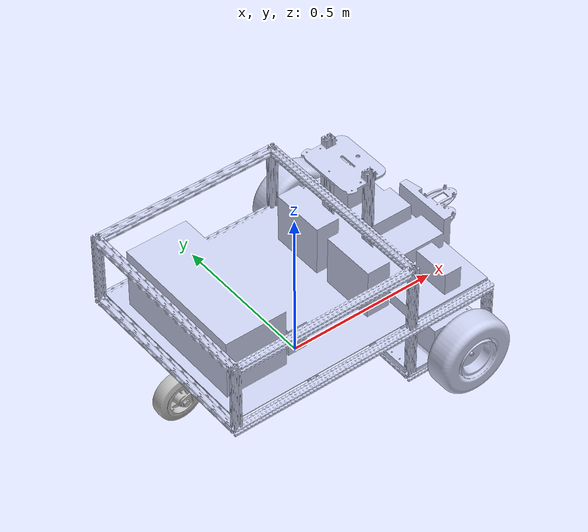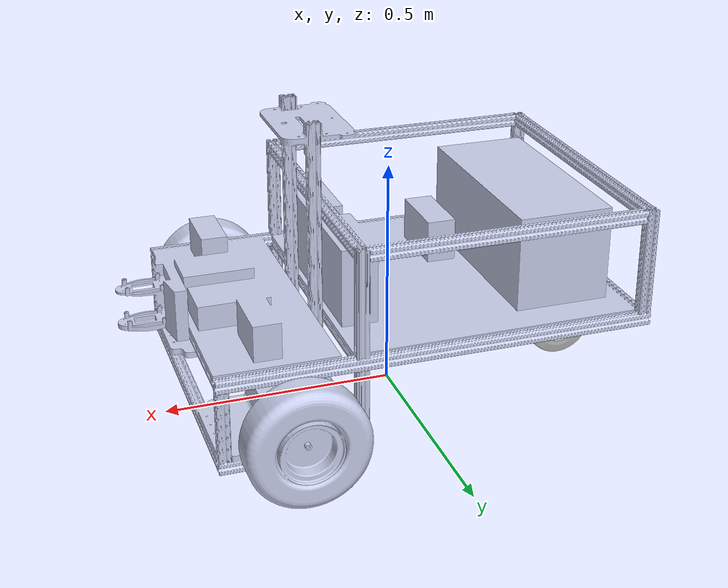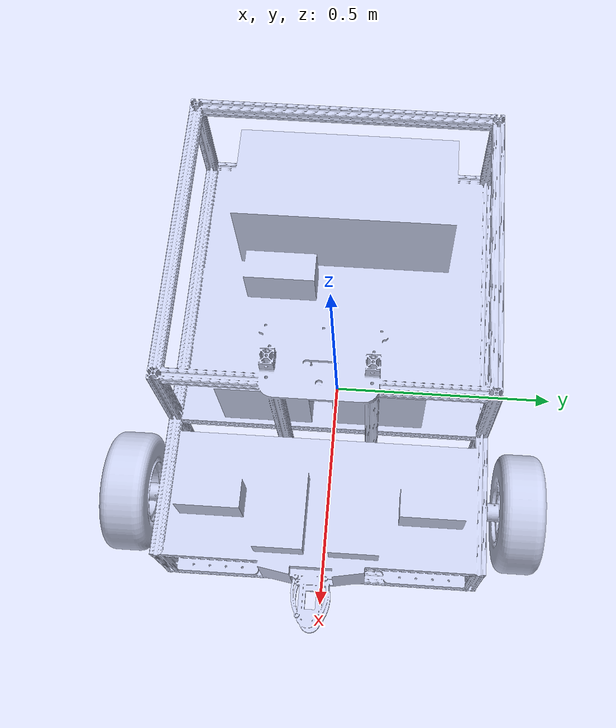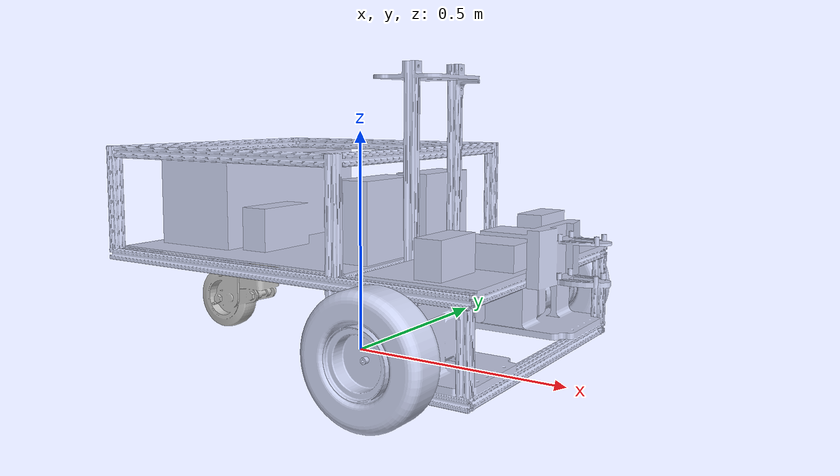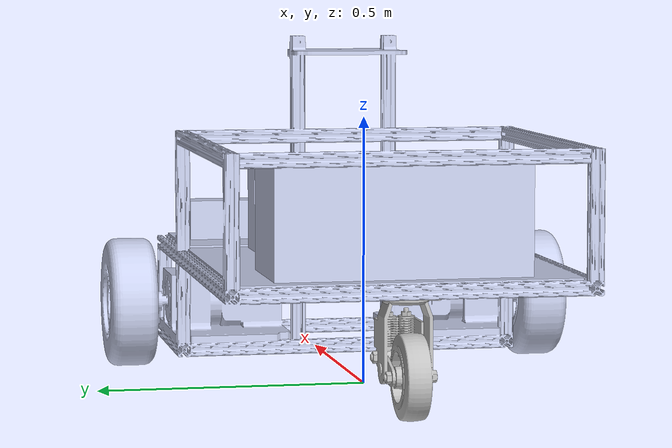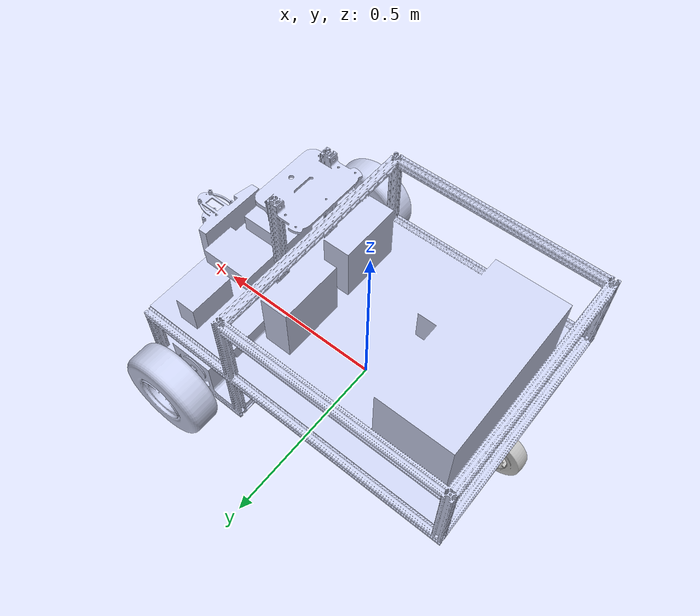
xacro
<?xml version="1.0" encoding="utf-8"?>
<robot name="espresso_old" xmlns:xacro="http://ros.org/wiki/xacro">

  <link name="base_link" />

  <gazebo reference="chassis_link">
    <material>Gazebo/Grey</material>
  </gazebo>

  <gazebo reference="leftwheel_link">
    <material>Gazebo/Black</material>
  </gazebo>

  <gazebo reference="rightwheel_link">
    <material>Gazebo/Black</material>
  </gazebo>

  <gazebo reference="caster_link">
    <material>Gazebo/Black</material>
  </gazebo>

  <link name="chassis_link">
    <inertial>
      <origin xyz="0 0 0" rpy="0 0 0" />
		  <mass value="39.5369810886426" />
      <inertia
        ixx="0.585212117734519"
        ixy="1.57971174375172E-05"
        ixz="6.29607408717495E-07"
        iyy="0.277071772262219"
        iyz="8.37063970658785E-12"
        izz="0.670549792015464" />
    </inertial>

    <visual>
      <origin xyz="0 0 0" rpy="0 0 0" />
      <geometry>
        <mesh
          filename="package://description/rover_model/meshes/chassis_link.STL" />
      </geometry>
      <material name="chassis">
        <color rgba="0.792156862745098 0.819607843137255 0.933333333333333 1" />
      </material>
    </visual>

    <collision>
      <origin xyz="0 0 0" rpy="0 0 0" />
      <geometry>
        <mesh filename="package://description/rover_model/meshes/chassis_link.STL" />
      </geometry>
    </collision>
  </link>

  <joint name="chassis_joint" type="fixed">
    <origin xyz="0 0 0.34041" rpy="0 0 0" />
    <parent link="base_link" />
    <child link="chassis_link" />
    <axis xyz="0 0 0" />
  </joint>

  <link name="leftwheel_link">
    <inertial>
      <origin xyz="5.55111512312578E-17 8.21278600682263E-11 9.54399316521748E-08" rpy="0 0 0" />
      <mass value="3.53301379822865" />
      <inertia
        ixx="0.0305624051588082"
        ixy="5.44931137897226E-20"
        ixz="1.89200393429209E-18"
        iyy="0.0173141878189182"
        iyz="-3.6016813083668E-11"
        izz="0.0173141459630085" />
    </inertial>

    <visual>
      <origin xyz="0 0 0" rpy="0 0 0" />
      <geometry>
        <mesh filename="package://description/rover_model/meshes/leftwheel_link.STL" />
      </geometry>
      <material name="leftwheel">
        <color rgba="0.792156862745098 0.819607843137255 0.933333333333333 1" />
      </material>
    </visual>

    <collision>
      <origin xyz="0 0 0" rpy="0 0 0" />
      <geometry>
        <mesh filename="package://description/rover_model/meshes/leftwheel_link.STL" />
      </geometry>
    </collision>
  </link>

  <joint name="leftwheel_joint" type="fixed">
    <origin xyz="0.304778606533675 0.405179996867082 -0.215405882983008" rpy="0 0 1.5707963267949" />
    <parent link="chassis_link" />
    <child link="leftwheel_link" />
    <axis xyz="0 0 0" />
  </joint>

  <link name="rightwheel_link">
    <inertial>
      <origin xyz="5.55111512312578E-17 8.21278600682263E-11 9.54399316521748E-08" rpy="0 0 0" />
      <mass value="3.53301379822866" />
      <inertia
        ixx="0.0305624051588083"
        ixy="5.28218602084818E-19"
        ixz="4.30828412271815E-19"
        iyy="0.0173141878189182"
        iyz="-3.60168128331012E-11"
        izz="0.0173141459630085" />
    </inertial>

    <visual>
      <origin xyz="0 0 0" rpy="0 0 0" />
      <geometry>
        <mesh filename="package://description/rover_model/meshes/rightwheel_link.STL" />
      </geometry>
      <material name="rightwheel">
        <color rgba="0.792156862745098 0.819607843137255 0.933333333333333 1" />
      </material>
    </visual>

    <collision>
      <origin xyz="0 0 0" rpy="0 0 0" />
      <geometry>
        <mesh filename="package://description/rover_model/meshes/rightwheel_link.STL" />
      </geometry>
    </collision>
  </link>

  <joint name="rightwheel_joint" type="fixed">
    <origin xyz="0.304821393466325 -0.405179996867083 -0.215405882983008" rpy="0 0 -1.5707963267949" />
    <parent link="chassis_link" />
    <child link="rightwheel_link" />
    <axis xyz="0 0 0" />
  </joint>

  <link name="caster_link">
    <inertial>
      <origin xyz="-0.0207803938778721 3.28381970077043E-05 -0.114410646083436" rpy="0 0 0" />
      <mass value="1.04393630391833" />
      <inertia
        ixx="0.00251624374833463"
        ixy="2.49757733670031E-07"
        ixz="8.7516079967526E-05"
        iyy="0.00365084050776034"
        iyz="2.01087649112496E-06"
        izz="0.00210479541298768" />
    </inertial>

    <visual>
      <origin xyz="0 0 0" rpy="0 0 0" />
      <geometry>
        <mesh filename="package://description/rover_model/meshes/caster_link.STL" />
      </geometry>
      <material name="caster">
        <color rgba="0.752941176470588 0.752941176470588 0.752941176470588 1" />
      </material>
    </visual>

    <collision>
      <origin xyz="0 0 0" rpy="0 0 0" />
      <geometry>
        <mesh filename="package://description/rover_model/meshes/caster_link.STL" />
      </geometry>
    </collision>
  </link>

  <joint name="caster_joint" type="fixed">
    <origin xyz="-0.368330160648919 0.00152400000000027 -0.131826" rpy="0 0 0" />
    <parent link="chassis_link" />
    <child link="caster_link" />
    <axis xyz="0 0 0" />
  </joint>
</robot>
